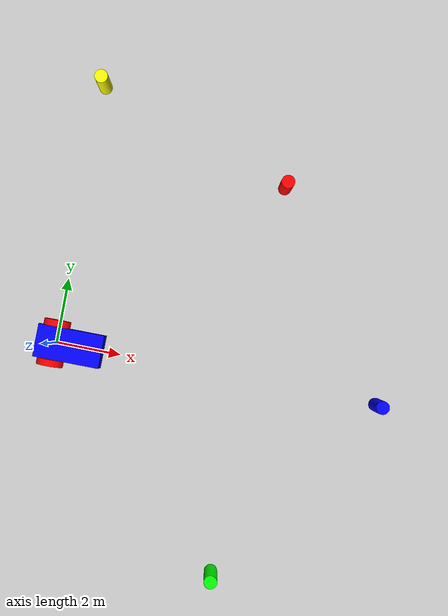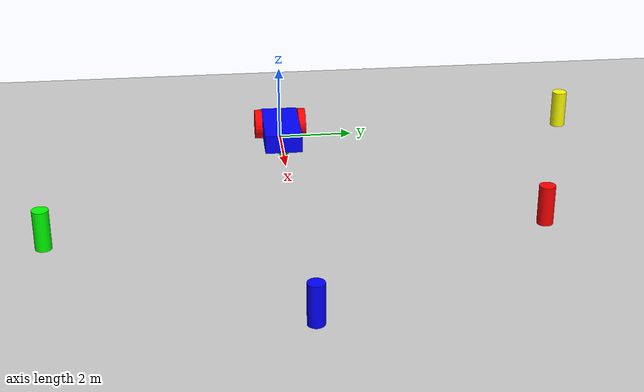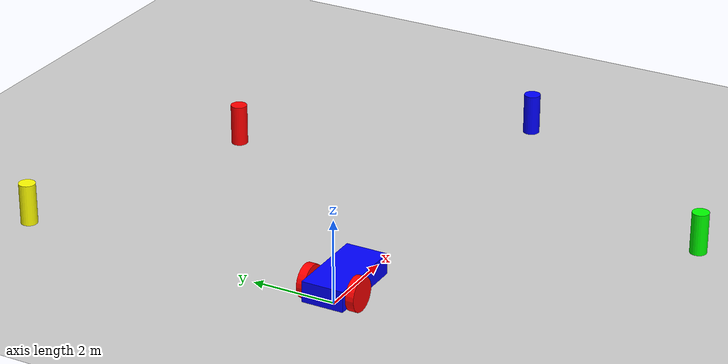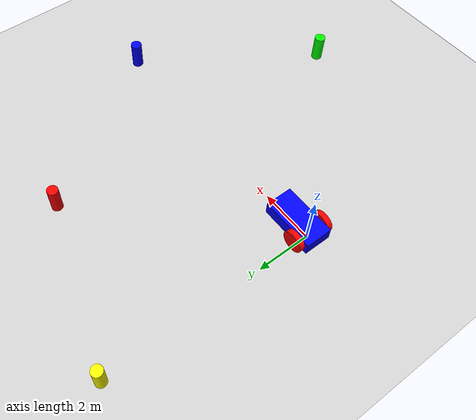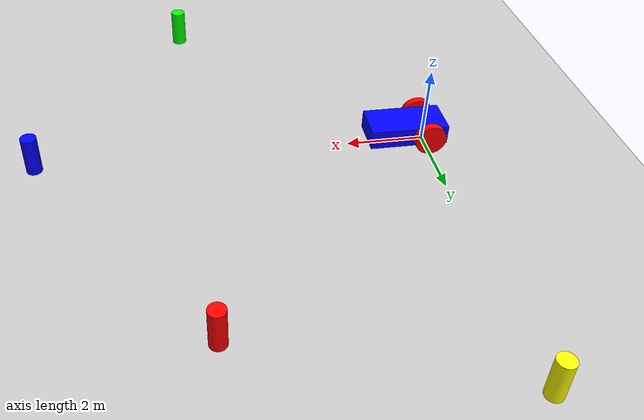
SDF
<?xml version="1.0" ?>
<sdf version="1.7">
    <world name="project_world">
        <physics name="1ms" type="ignored">
            <max_step_size>0.001</max_step_size>
            <real_time_factor>1.0</real_time_factor>
        </physics>
        <plugin
            filename="libignition-gazebo-physics-system.so"
            name="ignition::gazebo::systems::Physics">
        </plugin>
        <plugin
            filename="libignition-gazebo-user-commands-system.so"
            name="ignition::gazebo::systems::UserCommands">
        </plugin>
        <plugin
            filename="libignition-gazebo-scene-broadcaster-system.so"
            name="ignition::gazebo::systems::SceneBroadcaster">
        </plugin>
        <plugin filename="libignition-gazebo-imu-system.so"
                name="ignition::gazebo::systems::Imu">
        </plugin>
        <plugin
          filename="libignition-gazebo-sensors-system.so"
          name="ignition::gazebo::systems::Sensors">
          <render_engine>ogre2</render_engine>
        </plugin>

        <gui fullscreen="0">

            <!-- 3D scene -->
            <plugin filename="GzScene3D" name="3D View">
                <ignition-gui>
                <title>3D View</title>
                <property type="bool" key="showTitleBar">false</property>
                <property type="string" key="state">docked</property>
                </ignition-gui>

                <engine>ogre2</engine>
                <scene>scene</scene>
                <ambient_light>0.4 0.4 0.4</ambient_light>
                <background_color>0.8 0.8 0.8</background_color>
            </plugin>

            <!-- World control -->
            <plugin filename="WorldControl" name="World control">
                <ignition-gui>
                <title>World control</title>
                <property type="bool" key="showTitleBar">false</property>
                <property type="bool" key="resizable">false</property>
                <property type="double" key="height">72</property>
                <property type="double" key="width">121</property>
                <property type="double" key="z">1</property>

                <property type="string" key="state">floating</property>
                <anchors target="3D View">
                    <line own="left" target="left"/>
                    <line own="bottom" target="bottom"/>
                </anchors>
                </ignition-gui>

                <play_pause>true</play_pause>
                <step>true</step>
                <start_paused>true</start_paused>
                <service>/world/project_world/control</service>
                <stats_topic>/world/project_world/stats</stats_topic>
            </plugin>

            <!-- World statistics -->
            <plugin filename="WorldStats" name="World stats">
                <ignition-gui>
                <title>World stats</title>
                <property type="bool" key="showTitleBar">false</property>
                <property type="bool" key="resizable">false</property>
                <property type="double" key="height">110</property>
                <property type="double" key="width">290</property>
                <property type="double" key="z">1</property>

                <property type="string" key="state">floating</property>
                <anchors target="3D View">
                    <line own="right" target="right"/>
                    <line own="bottom" target="bottom"/>
                </anchors>
                </ignition-gui>

                <sim_time>true</sim_time>
                <real_time>true</real_time>
                <real_time_factor>true</real_time_factor>
                <iterations>true</iterations>
                <topic>/world/project_world/stats</topic>

            </plugin>

            <!-- Entity tree -->
            <plugin filename="EntityTree" name="Entity tree">
            </plugin>

        </gui>

        <light type="directional" name="sun">
            <cast_shadows>true</cast_shadows>
            <pose>0 0 10 0 0 0</pose>
            <diffuse>0.8 0.8 0.8 1</diffuse>
            <specular>0.2 0.2 0.2 1</specular>
            <attenuation>
                <range>1000</range>
                <constant>0.9</constant>
                <linear>0.01</linear>
                <quadratic>0.001</quadratic>
            </attenuation>
            <direction>-0.5 0.1 -0.9</direction>
        </light>

        <model name="ground_plane">
            <static>true</static>
            <link name="link">
                <collision name="collision">
                <geometry>
                    <plane>
                    <normal>0 0 1</normal>
                    </plane>
                </geometry>
                </collision>
                <visual name="visual">
                <geometry>
                    <plane>
                    <normal>0 0 1</normal>
                    <size>100 100</size>
                    </plane>
                </geometry>
                <material>
                    <ambient>0.8 0.8 0.8 1</ambient>
                    <diffuse>0.8 0.8 0.8 1</diffuse>
                    <specular>0.8 0.8 0.8 1</specular>
                </material>
                </visual>
            </link>
        </model>

	<model name='landmark_red'>
            <static>true</static>
            <pose>6 6 0.5 0 0 0</pose>
            <link name='link'>
                <visual name='visual'>
                    <geometry><cylinder><radius>0.2</radius><length>1.0</length></cylinder></geometry>
                    <material><ambient>1 0 0 1</ambient><diffuse>1 0 0 1</diffuse></material>
                </visual>
            </link>
        </model>

        <model name='landmark_green'>
            <static>true</static>
            <pose>6 -6 0.5 0 0 0</pose>
            <link name='link'>
                <visual name='visual'>
                    <geometry><cylinder><radius>0.2</radius><length>1.0</length></cylinder></geometry>
                    <material><ambient>0 1 0 1</ambient><diffuse>0 1 0 1</diffuse></material>
                </visual>
            </link>
        </model>

        <model name='landmark_blue'>
            <static>true</static>
            <pose>10 0 0.5 0 0 0</pose>
            <link name='link'>
                <visual name='visual'>
                    <geometry><cylinder><radius>0.2</radius><length>1.0</length></cylinder></geometry>
                    <material><ambient>0 0 1 1</ambient><diffuse>0 0 1 1</diffuse></material>
                </visual>
            </link>
        </model>

        <model name='landmark_yellow'>
            <static>true</static>
            <pose>0 8 0.5 0 0 0</pose>
            <link name='link'>
                <visual name='visual'>
                    <geometry><cylinder><radius>0.2</radius><length>1.0</length></cylinder></geometry>
                    <material><ambient>1 1 0 1</ambient><diffuse>1 1 0 1</diffuse></material>
                </visual>
            </link>
        </model>

        <model name='vehicle_blue' canonical_link='chassis'>
            <pose relative_to='world'>0.0 0.0 0 0 0 0</pose>
            <frame name="lidar_frame" attached_to='chassis'>
                <pose>1.0 0 0.0 0 0 0</pose>
            </frame>

            <frame name="camera_frame" attached_to="chassis">
              <!-- forward, centered, a bit above the chassis -->
              <pose>1.0 0 0.0 0 0 0</pose>
            </frame>

            <link name='chassis'>
                <pose relative_to='__model__'>0.5 0 0.4 0 0 0</pose>
                <inertial> <!--inertial properties of the link mass, inertia matix-->
                    <mass>1.14395</mass>
                    <inertia>
                        <ixx>0.095329</ixx>
                        <ixy>0</ixy>
                        <ixz>0</ixz>
                        <iyy>0.381317</iyy>
                        <iyz>0</iyz>
                        <izz>0.476646</izz>
                    </inertia>
                </inertial>
                <visual name='visual'>
                    <geometry>
                        <box>
                            <size>2.0 1.0 0.5</size>
                        </box>
                    </geometry>
                    <!--let's add color to our link-->
                    <material>
                        <ambient>0.0 0.0 1.0 1</ambient>
                        <diffuse>0.0 0.0 1.0 1</diffuse>
                        <specular>0.0 0.0 1.0 1</specular>
                    </material>
                </visual>
                <collision name='collision'>
                    <geometry>
                        <box>
                            <size>2.0 1.0 0.5</size>
                        </box>
                    </geometry>
                </collision>
                <sensor name="imu_sensor" type="imu">
                    <imu>
                      <!-- Don’t output orientation; raw IMU feel -->
                      <enable_orientation>false</enable_orientation>

                      <!-- Gyro (rad/s): per-axis noise + slow bias drift -->
                      <angular_velocity>
                        <x>
                          <noise type="gaussian">
                            <mean>0.0</mean>
                            <stddev>0.0</stddev>
                            <bias_mean>0.0</bias_mean>
                            <bias_stddev>0.0</bias_stddev>
                            <dynamic_bias_stddev>0.0</dynamic_bias_stddev>
                            <dynamic_bias_correlation_time>3600</dynamic_bias_correlation_time>
                          </noise>
                        </x>
                        <y>
                          <noise type="gaussian">
                            <mean>0.0</mean>
                            <stddev>0.0</stddev>
                            <bias_mean>0.0</bias_mean>
                            <bias_stddev>0.0</bias_stddev>
                            <dynamic_bias_stddev>0.0</dynamic_bias_stddev>
                            <dynamic_bias_correlation_time>3600</dynamic_bias_correlation_time>
                          </noise>
                        </y>
                        <z>
                          <noise type="gaussian">
                            <mean>0.0</mean>
                            <stddev>0.0</stddev>
                            <bias_mean>0.0</bias_mean>
                            <bias_stddev>0.0</bias_stddev>
                            <dynamic_bias_stddev>0.0</dynamic_bias_stddev>
                            <dynamic_bias_correlation_time>3600</dynamic_bias_correlation_time>
                          </noise>
                        </z>
                      </angular_velocity>

                      <!-- Accel (m/s^2): per-axis noise + slow bias drift -->
                      <linear_acceleration>
                        <x>
                          <noise type="gaussian">
                            <mean>0.0</mean>
                            <stddev>0.0</stddev>
                            <bias_mean>0.0</bias_mean>
                            <bias_stddev>0.0</bias_stddev>
                            <dynamic_bias_stddev>0.0</dynamic_bias_stddev>
                            <dynamic_bias_correlation_time>3600</dynamic_bias_correlation_time>
                          </noise>
                        </x>
                        <y>
                          <noise type="gaussian">
                            <mean>0.0</mean>
                            <stddev>0.0</stddev>
                            <bias_mean>0.0</bias_mean>
                            <bias_stddev>0.0</bias_stddev>
                            <dynamic_bias_stddev>0.0</dynamic_bias_stddev>
                            <dynamic_bias_correlation_time>3600</dynamic_bias_correlation_time>
                          </noise>
                        </y>
                        <z>
                          <noise type="gaussian">
                            <mean>0.0</mean>
                            <stddev>0.0</stddev>
                            <bias_mean>0.0</bias_mean>
                            <bias_stddev>0.0</bias_stddev>
                            <dynamic_bias_stddev>0.0</dynamic_bias_stddev>
                            <dynamic_bias_correlation_time>3600</dynamic_bias_correlation_time>
                          </noise>
                        </z>
                      </linear_acceleration>
                    </imu>
                    <always_on>1</always_on>
                    <update_rate>50</update_rate>
                    <visualize>true</visualize>
                    <topic>vehicle_blue/imu</topic>
                </sensor>
                <sensor name="front_camera" type="camera">
                  <pose relative_to="camera_frame">0 0 0 0 0 0</pose>
                  <!-- Use absolute topics so bridging is trivial -->
                  <topic>vehicle_blue/camera/image</topic>
                  <update_rate>30</update_rate>
                  <camera>
                    <horizontal_fov>1.0472</horizontal_fov>  <!-- ~60 deg -->
                    <image>
                      <width>640</width>
                      <height>480</height>
                      <format>R8G8B8</format>
                    </image>
                    <clip>
                      <near>0.1</near>
                      <far>80.0</far>
                    </clip>
                    <noise>
                      <type>gaussian</type>
                      <mean>0.0</mean>
                      <stddev>0.05</stddev>
                    </noise>
                  </camera>
                  <always_on>1</always_on>
                  <visualize>true</visualize>
                </sensor>
            </link>
            <link name='left_wheel'>
                <pose relative_to="chassis">-0.5 0.6 0 -1.5707 0 0</pose>
                <inertial>
                    <mass>1</mass>
                    <inertia>
                        <ixx>0.043333</ixx>
                        <ixy>0</ixy>
                        <ixz>0</ixz>
                        <iyy>0.043333</iyy>
                        <iyz>0</iyz>
                        <izz>0.08</izz>
                    </inertia>
                </inertial>
                <visual name='visual'>
                    <geometry>
                        <cylinder>
                            <radius>0.4</radius>
                            <length>0.2</length>
                        </cylinder>
                    </geometry>
                    <material>
                        <ambient>1.0 0.0 0.0 1</ambient>
                        <diffuse>1.0 0.0 0.0 1</diffuse>
                        <specular>1.0 0.0 0.0 1</specular>
                    </material>
                </visual>
                <collision name='collision'>
                    <geometry>
                        <cylinder>
                            <radius>0.4</radius>
                            <length>0.2</length>
                        </cylinder>
                    </geometry>
                </collision>
            </link>
            <!--The same as left wheel but with different position-->
            <link name='right_wheel'>
                <pose relative_to="chassis">-0.5 -0.6 0 -1.5707 0 0</pose> <!--angles are in radian-->
                <inertial>
                    <mass>1</mass>
                    <inertia>
                        <ixx>0.043333</ixx>
                        <ixy>0</ixy>
                        <ixz>0</ixz>
                        <iyy>0.043333</iyy>
                        <iyz>0</iyz>
                        <izz>0.08</izz>
                    </inertia>
                </inertial>
                <visual name='visual'>
                    <geometry>
                        <cylinder>
                            <radius>0.4</radius>
                            <length>0.2</length>
                        </cylinder>
                    </geometry>
                    <material>
                        <ambient>1.0 0.0 0.0 1</ambient>
                        <diffuse>1.0 0.0 0.0 1</diffuse>
                        <specular>1.0 0.0 0.0 1</specular>
                    </material>
                </visual>
                <collision name='collision'>
                    <geometry>
                        <cylinder>
                            <radius>0.4</radius>
                            <length>0.2</length>
                        </cylinder>
                    </geometry>
                </collision>
            </link>
            <frame name="caster_frame" attached_to='chassis'>
              <pose>0.8 0 -0.2 0 0 0</pose>
            </frame>
            <!--caster wheel-->
            <link name='caster'>
                <pose relative_to='caster_frame'/>
                <inertial>
                    <mass>1</mass>
                    <inertia>
                        <ixx>0.016</ixx>
                        <ixy>0</ixy>
                        <ixz>0</ixz>
                        <iyy>0.016</iyy>
                        <iyz>0</iyz>
                        <izz>0.016</izz>
                    </inertia>
                </inertial>
                <visual name='visual'>
                    <geometry>
                        <sphere>
                            <radius>0.2</radius>
                        </sphere>
                    </geometry>
                    <material>
                        <ambient>0.0 1 0.0 1</ambient>
                        <diffuse>0.0 1 0.0 1</diffuse>
                        <specular>0.0 1 0.0 1</specular>
                    </material>
                </visual>
                <collision name='collision'>
                    <geometry>
                        <sphere>
                            <radius>0.2</radius>
                        </sphere>
                    </geometry>
                </collision>
            </link>

            <!--joints-->
            <joint name='left_wheel_joint' type='revolute'>
                <pose relative_to='left_wheel'/>
                <parent>chassis</parent>
                <child>left_wheel</child>
                <axis>
                    <xyz expressed_in='__model__'>0 1 0</xyz> <!--can be defined as any frame or even arbitrary frames-->
                    <limit>
                        <lower>-1.79769e+308</lower>    <!--negative infinity-->
                        <upper>1.79769e+308</upper>     <!--positive infinity-->
                    </limit>
                </axis>
            </joint>
            <joint name='right_wheel_joint' type='revolute'>
                <pose relative_to='right_wheel'/>
                <parent>chassis</parent>
                <child>right_wheel</child>
                <axis>
                    <xyz expressed_in='__model__'>0 1 0</xyz>
                    <limit>
                        <lower>-1.79769e+308</lower>    <!--negative infinity-->
                        <upper>1.79769e+308</upper>     <!--positive infinity-->
                    </limit>
                </axis>
            </joint>
            <joint name='caster_wheel' type='ball'>
                <parent>chassis</parent>
                <child>caster</child>
            </joint>
            <plugin
                filename="libignition-gazebo-diff-drive-system.so"
                name="ignition::gazebo::systems::DiffDrive">
                <left_joint>left_wheel_joint</left_joint>
                <right_joint>right_wheel_joint</right_joint>
                <wheel_separation>1.2</wheel_separation>
                <wheel_radius>0.4</wheel_radius>
                <odom_publish_frequency>1</odom_publish_frequency>
                <topic>vehicle_blue/cmd_vel</topic>
            </plugin>
        </model>
    </world>
</sdf>
